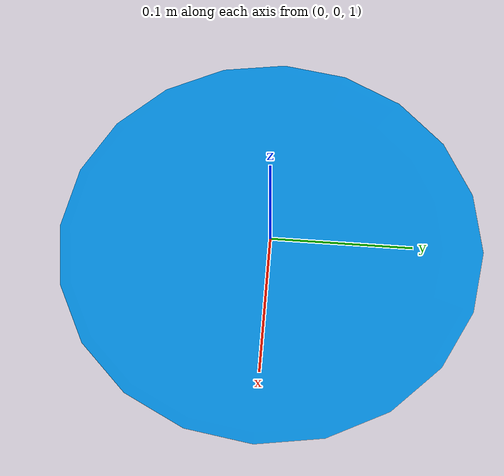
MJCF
<mujoco model="wind_plate">
  <!-- air density + viscosity, wind blowing along +x at 5 m/s -->
  <option density="1.225" viscosity="1.8e-5" wind="5 0 0" gravity="0 0 0"
          integrator="implicitfast"/>

  <worldbody>
    <!-- a thin flat plate (ellipsoid). orientation set per-instance below -->
    <body name="plate" pos="0 0 1">
      <freejoint/>
      <geom name="plate" type="ellipsoid" size=".15 .15 .002" mass=".01"
            fluidshape="ellipsoid" rgba="0 .5 .8 1"/>
    </body>
  </worldbody>
</mujoco>
